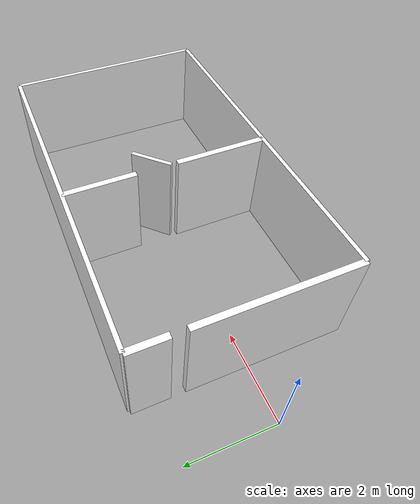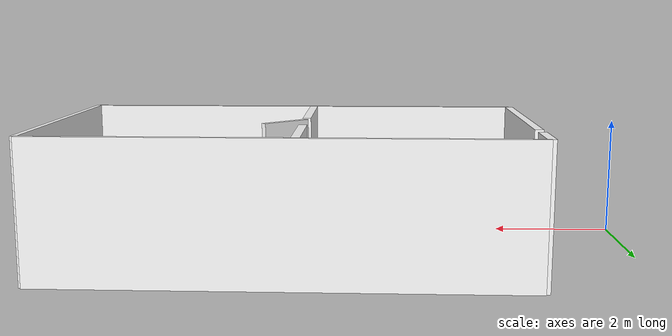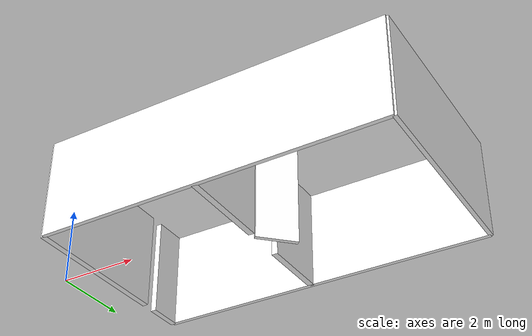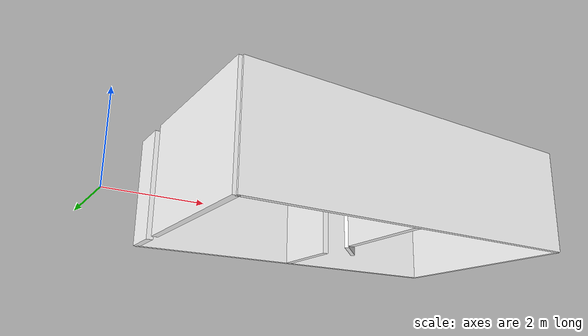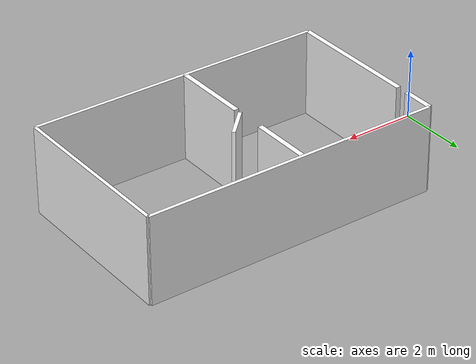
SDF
<?xml version='1.0' encoding='UTF-8'?>
<sdf version="1.10">
  <model name="realistic_room">

    <static>true</static>

    <link name="roof">
      <pose>5.75 0.0 2 0 0 0</pose>
      <collision name="roof_collision"><geometry><box><size>8.5 5.0 0.1</size></box></geometry></collision>
    </link>

    <link name="left_wall">
      <pose>5.75 2.5 0.75 0 0 0</pose>
      <collision name="left_wall_collision"><geometry><box><size>8.5 0.1 2.5</size></box></geometry></collision>
      <visual name="left_wall_visual"><geometry><box><size>8.5 0.1 2.5</size></box></geometry>
        <material><diffuse>1 1 1 1</diffuse><pbr><metal><albedo_map>/home/harshmodi/PX4-Autopilot/Tools/simulation/gz/models/realistic_room/materials/textures/brickwall.png</albedo_map></metal></pbr></material>
      </visual>
    </link>

    <link name="right_wall">
      <pose>5.75 -2.5 0.75 0 0 0</pose>
      <collision name="right_wall_collision"><geometry><box><size>8.5 0.1 2.5</size></box></geometry></collision>
      <visual name="right_wall_visual"><geometry><box><size>8.5 0.1 2.5</size></box></geometry>
        <material><diffuse>1 1 1 1</diffuse><pbr><metal><albedo_map>/home/harshmodi/PX4-Autopilot/Tools/simulation/gz/models/realistic_room/materials/textures/brickwall.png</albedo_map></metal></pbr></material>
      </visual>
    </link>

    <link name="front_wall">
      <pose>10.0 0.0 0.75 0 0 0</pose>
      <collision name="front_wall_collision"><geometry><box><size>0.1 5 2.5</size></box></geometry></collision>
      <visual name="front_wall_visual"><geometry><box><size>0.1 5 2.5</size></box></geometry>
        <material><diffuse>1 1 1 1</diffuse><pbr><metal><albedo_map>/home/harshmodi/PX4-Autopilot/Tools/simulation/gz/models/realistic_room/materials/textures/brickwall.png</albedo_map></metal></pbr></material>
      </visual>
    </link>

    <link name="wall1_left">
      <pose>1.5 2.0601 0.75 0 0 0</pose>
      <collision name="wall1_left_collision"><geometry><box><size>0.15 0.8797 2.5</size></box></geometry></collision>
      <visual name="wall1_left_visual"><geometry><box><size>0.15 0.8797 2.5</size></box></geometry>
        <material><diffuse>1 1 1 1</diffuse><pbr><metal><albedo_map>/home/harshmodi/PX4-Autopilot/Tools/simulation/gz/models/realistic_room/materials/textures/brickwall.png</albedo_map></metal></pbr></material>
      </visual>
    </link>

    <link name="wall1_right">
      <pose>1.5 -0.6049 0.75 0 0 0</pose>
      <collision name="wall1_right_collision"><geometry><box><size>0.15 3.7903 2.5</size></box></geometry></collision>
      <visual name="wall1_right_visual"><geometry><box><size>0.15 3.7903 2.5</size></box></geometry>
        <material><diffuse>1 1 1 1</diffuse><pbr><metal><albedo_map>/home/harshmodi/PX4-Autopilot/Tools/simulation/gz/models/realistic_room/materials/textures/brickwall.png</albedo_map></metal></pbr></material>
      </visual>
    </link>

    <link name="wall2_left">
      <pose>5.5 1.6295 0.75 0 0 0</pose>
      <collision name="wall2_left_collision"><geometry><box><size>0.15 1.7410 2.5</size></box></geometry></collision>
      <visual name="wall2_left_visual"><geometry><box><size>0.15 1.7410 2.5</size></box></geometry>
        <material><diffuse>1 1 1 1</diffuse><pbr><metal><albedo_map>/home/harshmodi/PX4-Autopilot/Tools/simulation/gz/models/realistic_room/materials/textures/brickwall.png</albedo_map></metal></pbr></material>
      </visual>
    </link>

    <link name="wall2_right">
      <pose>5.5 -1.3705 0.75 0 0 0</pose>
      <collision name="wall2_right_collision"><geometry><box><size>0.15 2.2590 2.5</size></box></geometry></collision>
      <visual name="wall2_right_visual"><geometry><box><size>0.15 2.2590 2.5</size></box></geometry>
        <material><diffuse>1 1 1 1</diffuse><pbr><metal><albedo_map>/home/harshmodi/PX4-Autopilot/Tools/simulation/gz/models/realistic_room/materials/textures/brickwall.png</albedo_map></metal></pbr></material>
      </visual>
    </link>

    <link name="door">
      <pose>5.85 0.2590 0.75 0 0 0.78</pose>
      <collision name="door_collision"><geometry><box><size>1.0 0.1 2.5</size></box></geometry></collision>
      <visual name="door_visual"><geometry><box><size>1.0 0.1 2.5</size></box></geometry>
        <material><diffuse>1 1 1 1</diffuse><pbr><metal><albedo_map>/home/harshmodi/PX4-Autopilot/Tools/simulation/gz/models/realistic_room/materials/textures/door.png</albedo_map></metal></pbr></material>
      </visual>
    </link>

  </model>
</sdf>
